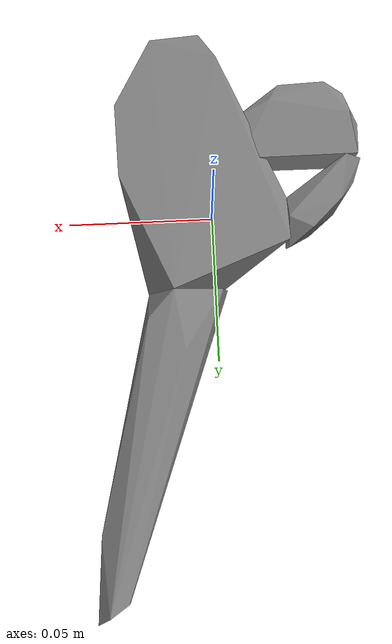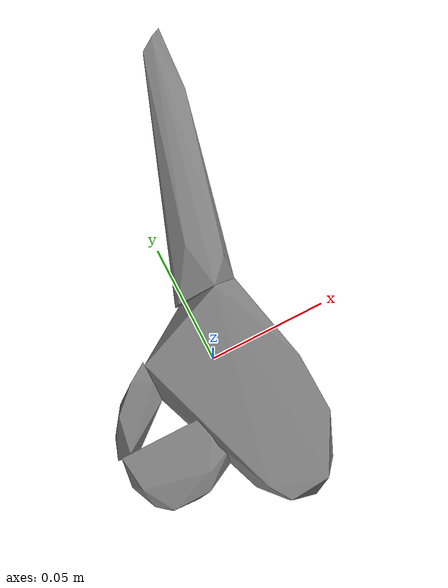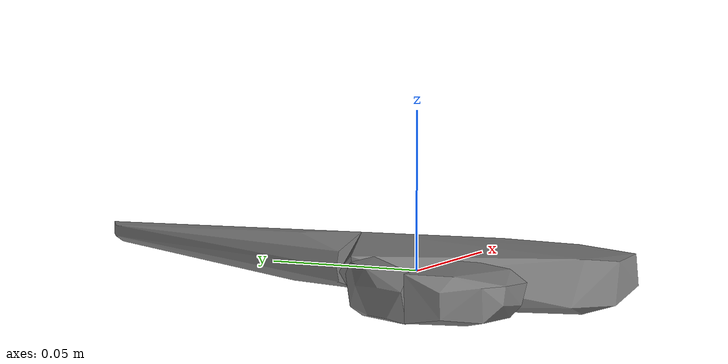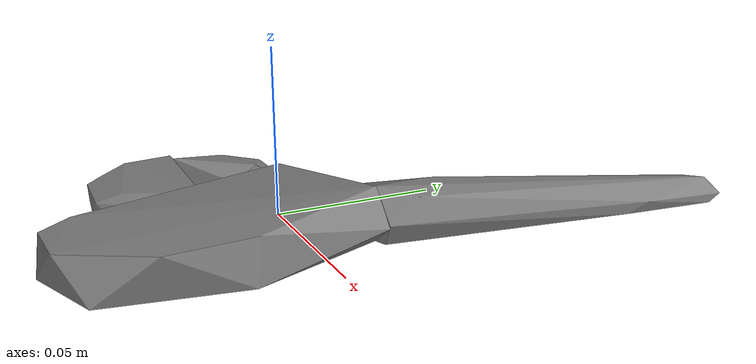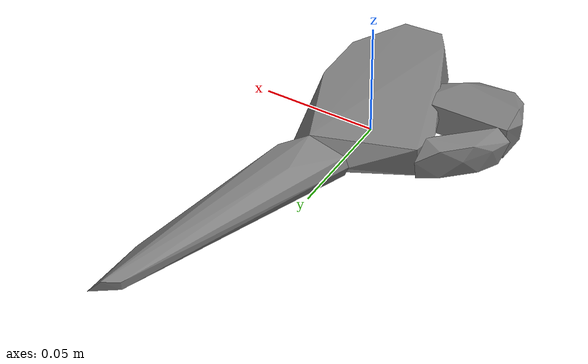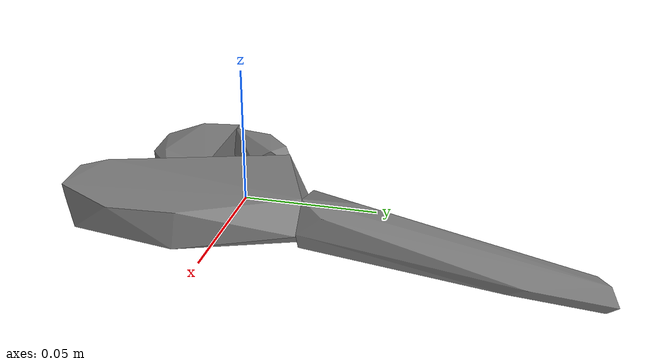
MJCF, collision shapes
<mujoco model="scissors">
  <compiler angle="radian" />

  <asset>
    <mesh name="scissors_visual_mesh" file="scissors/textured.obj" />
    <mesh name="scissors_collision_mesh_0" file="scissors/textured_coacd_0.stl" />
    <mesh name="scissors_collision_mesh_1" file="scissors/textured_coacd_1.stl" />
    <mesh name="scissors_collision_mesh_2" file="scissors/textured_coacd_2.stl" />
    <mesh name="scissors_collision_mesh_3" file="scissors/textured_coacd_3.stl" />
    <texture name="scissors_texture" type="2d" file="scissors/texture_map.png" />
    <material name="scissors_material" texture="scissors_texture" />
  </asset>

  <worldbody>
    <body name="scissors" pos="0 0 0" euler="0 0 0">
      <freejoint name="scissors_joint" />
      <geom name="scissors_visual_geom" type="mesh" mesh="scissors_visual_mesh" material="scissors_material" pos="-0.01459152171807974 -0.0031621364077388443 -0.007400674371156582" euler="0 0 0" contype="0" conaffinity="0" group="0" />
      <geom name="scissors_collision_geom_0" type="mesh" mesh="scissors_collision_mesh_0" pos="-0.01459152171807974 -0.0031621364077388443 -0.007400674371156582" euler="0 0 0" contype="1" conaffinity="1" group="3" />
      <geom name="scissors_collision_geom_1" type="mesh" mesh="scissors_collision_mesh_1" pos="-0.01459152171807974 -0.0031621364077388443 -0.007400674371156582" euler="0 0 0" contype="1" conaffinity="1" group="3" />
      <geom name="scissors_collision_geom_2" type="mesh" mesh="scissors_collision_mesh_2" pos="-0.01459152171807974 -0.0031621364077388443 -0.007400674371156582" euler="0 0 0" contype="1" conaffinity="1" group="3" />
      <geom name="scissors_collision_geom_3" type="mesh" mesh="scissors_collision_mesh_3" pos="-0.01459152171807974 -0.0031621364077388443 -0.007400674371156582" euler="0 0 0" contype="1" conaffinity="1" group="3" />
      <inertial pos="0 0 0" euler="0 0 0" mass="0.082" diaginertia="0.001 0.001 0.001" />
    </body>
  </worldbody>
</mujoco>
